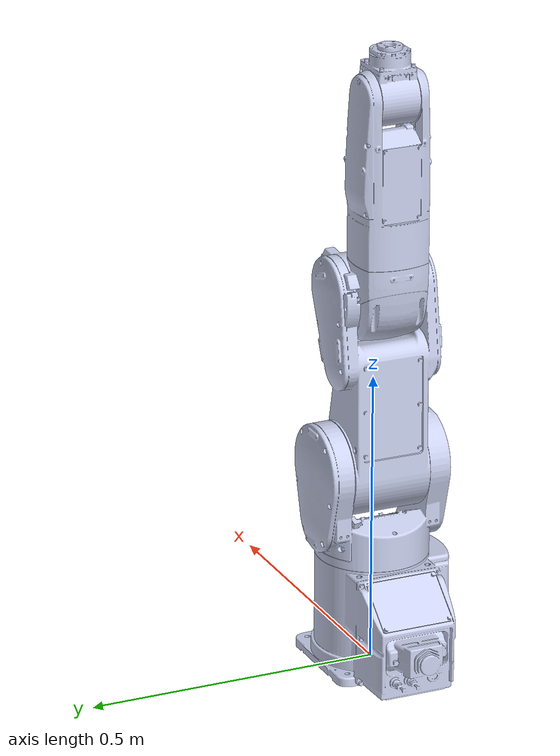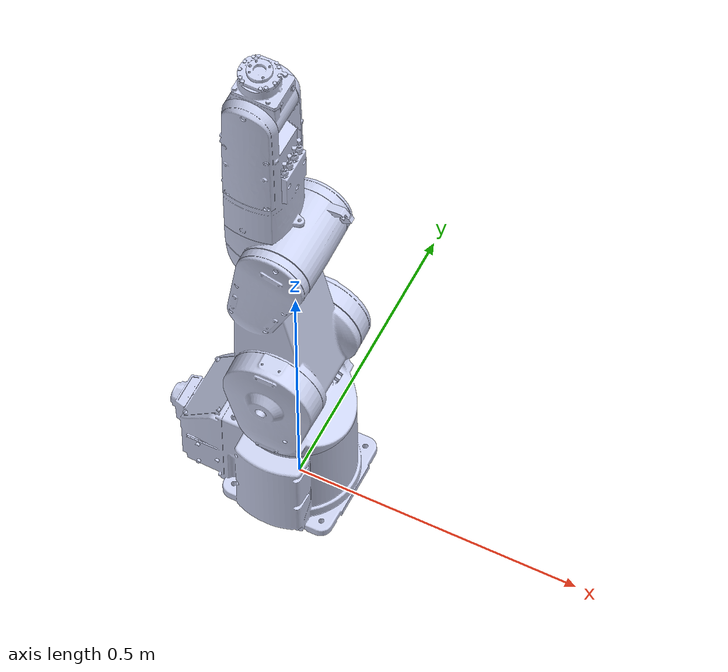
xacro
<?xml version="1.0"?>
<robot xmlns:xacro="http://www.ros.org/wiki/xacro" name="rv_4frl_d">

    <xacro:arg name="prefix" default="" />
    <xacro:arg name="use_sim" default="false" />
    <xacro:arg name="robot_ip" default="192.168.0.20" />
    <xacro:arg name="robot_udp_port" default="10000" />
    <xacro:arg name="robot" default="rv_4frl_d" />

    <xacro:include filename="$(find mitsubishi_ros2_description)/urdf/rv_4frl_d/rv_4frl_d.urdf.xacro" />
    <xacro:include filename="$(find rv_4frl_d_moveit_config)/config/rv_4frl_d.ros2_control.xacro" />

    <!-- Used for fixing robot -->
    <link name="world"/>
    <gazebo reference="world">
        <static>true</static>
    </gazebo>

    <xacro:rv_4frl_d parent="world" prefix="$(arg prefix)">
      <origin xyz="0 0 0" rpy="0 0 0" />
    </xacro:rv_4frl_d>

    <xacro:rv_4frl_d_ros2_control
        name="rv_4frl_d_ros_control"
        robot_ip="$(arg robot_ip)"
        prefix="$(arg prefix)"
        robot_udp_port="$(arg robot_udp_port)"
        use_sim="$(arg use_sim)" />

    <xacro:if value="$(arg use_sim)">
      <gazebo>
        <plugin filename="libgazebo_ros2_control.so" name="gazebo_ros2_control">
          <parameters>$(find rv_4frl_d_moveit_config)/config/rv_4frl_d_controllers.yaml</parameters>
        </plugin>
      </gazebo>
    </xacro:if>

</robot>

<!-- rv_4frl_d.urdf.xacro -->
<robot xmlns:xacro="http://www.ros.org/wiki/xacro">

  <xacro:macro name="rv_4frl_d" params="parent prefix *origin">

    <material name="housing">
      <color rgba="0.79216 0.81961 0.93333 1"/>
    </material>

    <link name="${prefix}rv_4frl_d_base_link">
      <inertial>
            <mass value="1"/>
            <inertia ixx="1.0" ixy="0.0" ixz="0.0" iyy="1.0" iyz="0.0" izz="1.0"/>
      </inertial>
      <visual>
        <origin xyz="0 0 0" rpy="${pi/2} 0 ${pi}" />
        <geometry>
          <mesh filename="file://$(find mitsubishi_ros2_description)/meshes/rv_4frl_d/RV-4FRL_01_BASE.stl" scale="0.001 0.001 0.001"/>
        </geometry>
        <material name="housing"/>
      </visual>
      <collision>
        <origin xyz="0 0 0" rpy="${pi/2} 0.00000000 ${pi}" />
        <geometry>
          <mesh filename="file://$(find mitsubishi_ros2_description)/meshes/rv_4frl_d/RV-4FRL_01_BASE.stl" scale="0.001 0.001 0.001"/>
        </geometry>
      </collision>
    </link>

    <joint name="${prefix}rv_4frl_d_base" type="fixed">
      <xacro:insert_block name="origin" />
      <parent link="${parent}"/>
      <child link="${prefix}rv_4frl_d_base_link"/>
    </joint>

    <joint name="${prefix}J1" type="revolute">
      <origin xyz="0 0 0" rpy="0 0 0" />
      <parent link="${prefix}rv_4frl_d_base_link" />
      <child link="${prefix}link_1" />
      <axis xyz="0 0 1" />
      <limit
        lower="${-240*pi/180}" upper="${240*pi/180}"
        velocity="${420*pi/180}"
        effort="300.0" />
    </joint>

    <link name="${prefix}link_1">
      <inertial>
          <mass value="1"/>
          <inertia ixx="1.0" ixy="0.0" ixz="0.0" iyy="1.0" iyz="0.0" izz="1.0"/>
      </inertial>
      <visual>
        <origin xyz="0 0 0" rpy="${pi/2} 0.0 0.0" />
        <geometry>
          <mesh filename="file://$(find mitsubishi_ros2_description)/meshes/rv_4frl_d/RV-4FRL_02_SHOULDER.stl" scale="0.001 0.001 0.001"/>
        </geometry>
        <material name="housing"/>
      </visual>
      <collision>
        <origin xyz="0 0 0" rpy="${pi/2} 0.0 0.0" />
        <geometry>
          <mesh filename="file://$(find mitsubishi_ros2_description)/meshes/rv_4frl_d/RV-4FRL_02_SHOULDER.stl" scale="0.001 0.001 0.001"/>
        </geometry>
      </collision>
    </link>

    <joint name="${prefix}J2" type="revolute">
      <origin xyz="0 0 0.350" rpy="${pi/2} 0 ${pi}" />
      <parent link="${prefix}link_1" />
      <child link="${prefix}link_2" />
      <axis xyz="0 0 1" />
      <limit
        lower="${-120*pi/180}" upper="${120*pi/180}"
        velocity="${336*pi/180}"
        effort="300.0"/>
    </joint>

    <link name="${prefix}link_2">
      <inertial>
        <mass value="1"/>
        <inertia ixx="1.0" ixy="0.0" ixz="0.0" iyy="1.0" iyz="0.0" izz="1.0"/>
      </inertial>
      <visual>
        <origin xyz="0 -0.350 0 " rpy="0.0 0.0 0.0" />
        <geometry>
          <mesh filename="file://$(find mitsubishi_ros2_description)/meshes/rv_4frl_d/RV-4FRL_03_NO1ARM.stl" scale="0.001 0.001 0.001"/>
        </geometry>
        <material name="housing"/>
      </visual>
      <collision>
        <origin xyz="0 -0.350 0 " rpy="0.0 0.0 0.0" />
        <geometry>
          <mesh filename="file://$(find mitsubishi_ros2_description)/meshes/rv_4frl_d/RV-4FRL_03_NO1ARM.stl" scale="0.001 0.001 0.001"/>
        </geometry>
      </collision>
    </link>

    <joint name="${prefix}J3" type="revolute">
      <origin xyz="0 0.310 0" rpy="0.0 0.0 ${-pi/2}" />
      <parent link="${prefix}link_2" />
      <child link="${prefix}link_3" />
      <axis xyz="0 0 1" />
      <limit
        lower="${0*pi/180}" upper="${164*pi/180}"
        velocity="${250*pi/180}"
        effort="300.0" />
    </joint>

    <link name="${prefix}link_3">
      <inertial>
        <mass value="1"/>
        <inertia ixx="1.0" ixy="0.0" ixz="0.0" iyy="1.0" iyz="0.0" izz="1.0"/>
      </inertial>
      <visual>
        <origin xyz="0 ${-0.350-0.310} 0" rpy="0 0 0" />
        <geometry>
          <mesh filename="file://$(find mitsubishi_ros2_description)/meshes/rv_4frl_d/RV-4FRL_04_ELBOW.stl" scale="0.001 0.001 0.001"/>
        </geometry>
        <material name="housing"/>
      </visual>
      <collision>
        <origin xyz="0 ${-0.350-0.310} 0" rpy="0 0 0" />
        <geometry>
          <mesh filename="file://$(find mitsubishi_ros2_description)/meshes/rv_4frl_d/RV-4FRL_04_ELBOW.stl" scale="0.001 0.001 0.001"/>
        </geometry>
      </collision>
    </link>

    <joint name="${prefix}J4" type="revolute">
      <origin xyz="0.0 0.050 0.0" rpy="${-pi/2} 0.00000000 0.00000000" />
      <parent link="${prefix}link_3" />
      <child link="${prefix}link_4" />
      <axis xyz="1 0 0" />
      <limit
        lower="${-200*pi/180}" upper="${200*pi/180}"
        velocity="${540*pi/180}"
        effort="300.0" />
    </joint>

    <link name="${prefix}link_4">
      <inertial>
        <mass value="1"/>
        <inertia ixx="1.0" ixy="0.0" ixz="0.0" iyy="1.0" iyz="0.0" izz="1.0"/>
      </inertial>
      <visual>
        <origin xyz="0 0 ${-0.350-0.310-0.050}" rpy="${pi/2} 0 0" />
        <geometry>
          <mesh filename="file://$(find mitsubishi_ros2_description)/meshes/rv_4frl_d/RV-4FRL_05_NO2ARM.stl" scale="0.001 0.001 0.001" />
        </geometry>
        <material name="housing"/>
      </visual>
      <collision>
        <origin xyz="-0.0498 0 -0.525" rpy="1.57079633 0 0" />
        <geometry>
          <mesh filename="file://$(find mitsubishi_ros2_description)/meshes/rv_4frl_d/RV-4FRL_05_NO2ARM.stl" scale="0.001 0.001 0.001"/>
        </geometry>
      </collision>
    </link>

    <joint name="${prefix}J5" type="revolute">
      <origin xyz="-0.335 0.0 0.0" rpy="${pi/2} 0.00000000 0.00000000" />
      <parent link="${prefix}link_4" />
      <child link="${prefix}link_5" />
      <axis xyz="0 0 1" />
      <limit
        lower="${-120*pi/180}" upper="${120*pi/180}"
        velocity="${623*pi/180}"
        effort="300.0" />
    </joint>

    <link name="${prefix}link_5">
      <inertial>
        <mass value="1"/>
        <inertia ixx="1.0" ixy="0.0" ixz="0.0" iyy="1.0" iyz="0.0" izz="1.0"/>
      </inertial>
      <visual>
        <origin xyz="0.335 ${-0.350-0.310-0.050} 0.0 " rpy="0 0 0" />
        <geometry>
          <mesh filename="file://$(find mitsubishi_ros2_description)/meshes/rv_4frl_d/RV-4FRL_06_WRIST.stl" scale="0.001 0.001 0.001"/>
        </geometry>
        <material name="housing"/>
      </visual>
      <collision>
        <origin xyz="-0.0498 -0.795 0" rpy="0 0 0" />
        <geometry>
          <mesh filename="file://$(find mitsubishi_ros2_description)/meshes/rv_4frl_d/RV-4FRL_06_WRIST.stl" scale="0.001 0.001 0.001"/>
        </geometry>
      </collision>
    </link>

    <joint name="${prefix}J6" type="revolute">
      <origin xyz="-0.08 0.0 0.0" rpy="0.0 0.0 0.0" />
      <parent link="${prefix}link_5" />
      <child link="${prefix}link_6" />
      <axis xyz="1 0 0" />
      <limit
        lower="${-360*pi/180}" upper="${360*pi/180}"
        velocity="${720*pi/180}" effort="300.0" />
    </joint>

    <link name="${prefix}link_6">
      <inertial>
        <mass value="1"/>
        <inertia ixx="1.0" ixy="0.0" ixz="0.0" iyy="1.0" iyz="0.0" izz="1.0"/>
      </inertial>
      <visual>
        <origin xyz="${0.335+0.08} ${-0.350-0.310-0.050} 0" rpy="0 0 0" />
        <geometry>
          <mesh filename="file://$(find mitsubishi_ros2_description)/meshes/rv_4frl_d/RV-4FRL_07_HAND_FLANGE.stl" scale="0.001 0.001 0.001"/>
        </geometry>
        <material name="housing"/>
      </visual>
      <collision>
        <origin xyz="-0.05 -0.05 -0.795" rpy="1.5 0 0" />
        <geometry>
          <mesh filename="file://$(find mitsubishi_ros2_description)/meshes/rv_4frl_d/RV-4FRL_07_HAND_FLANGE.stl" scale="0.001 0.001 0.001"/>
        </geometry>
      </collision>
    </link>

    <link name="${prefix}tool0">
      <inertial>
        <mass value="1"/>
        <inertia ixx="1.0" ixy="0.0" ixz="0.0" iyy="1.0" iyz="0.0" izz="1.0"/>
      </inertial>
    </link>

    <joint name="${prefix}J6-tool0" type="fixed">
        <origin rpy="0 0 0" xyz="0 0 0"/>
        <parent link="${prefix}link_6"/>
        <child link="${prefix}tool0"/>
    </joint>

  </xacro:macro>
</robot>
